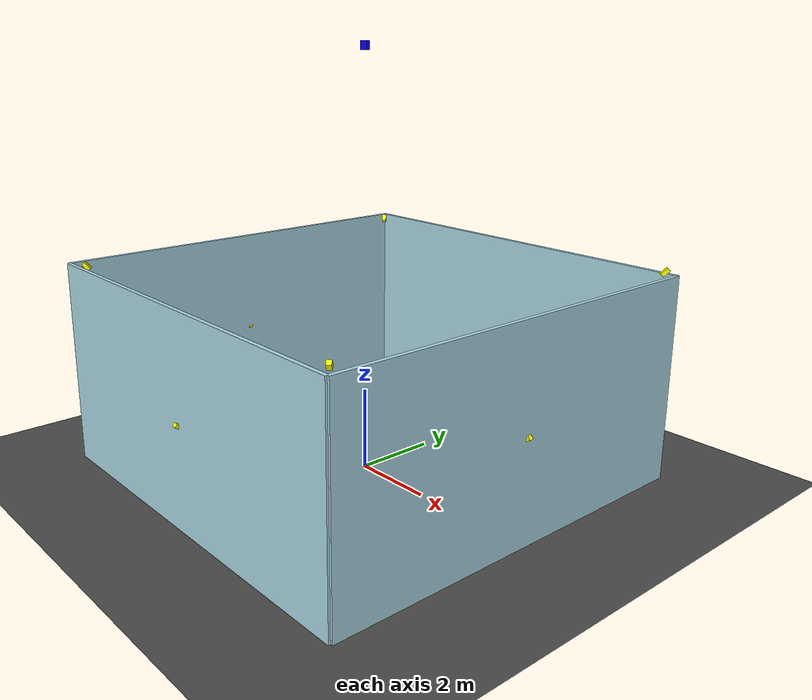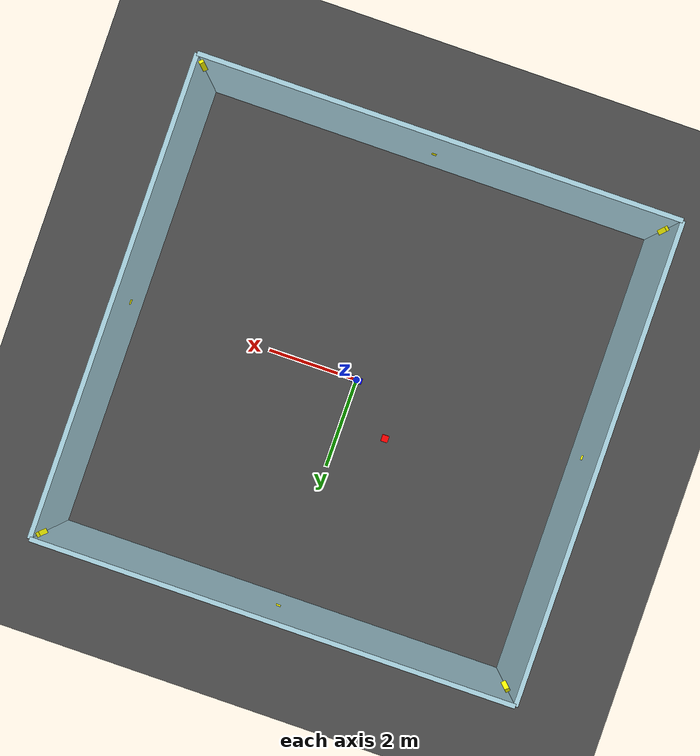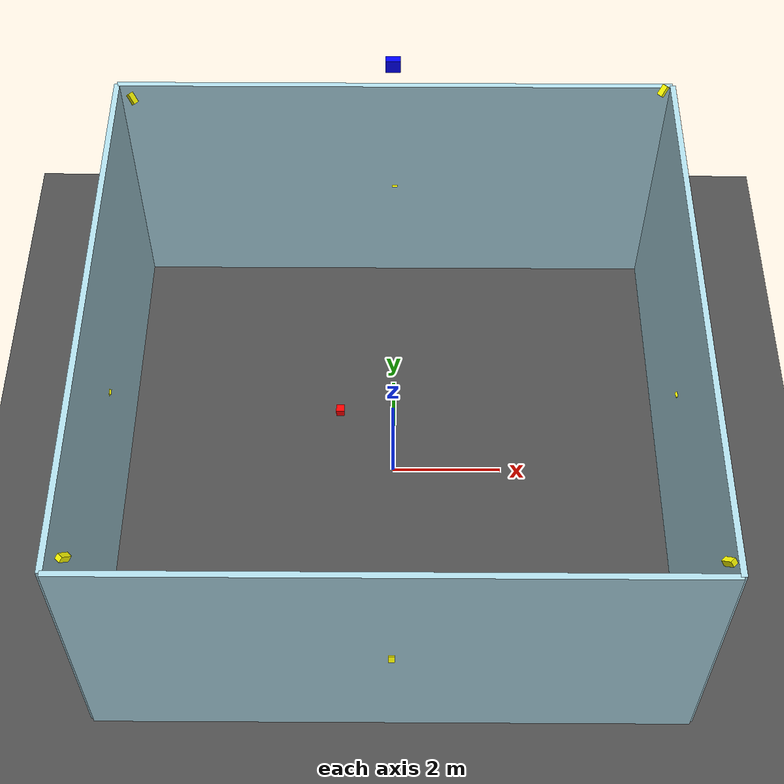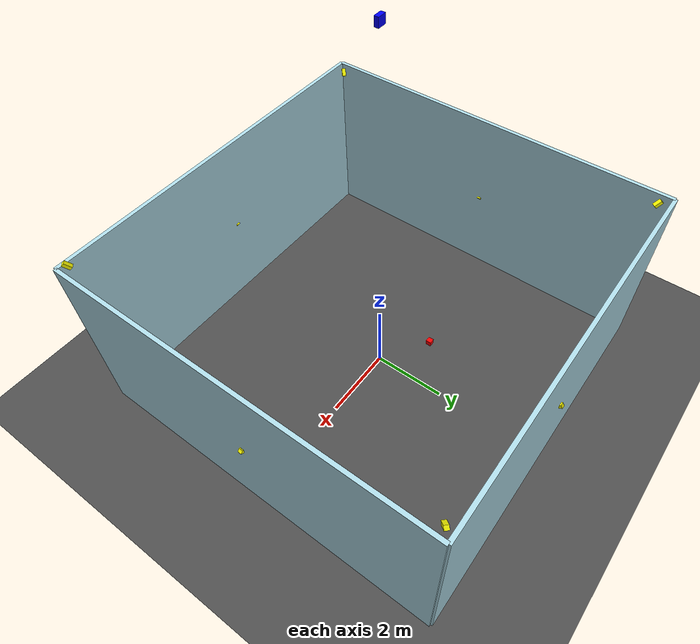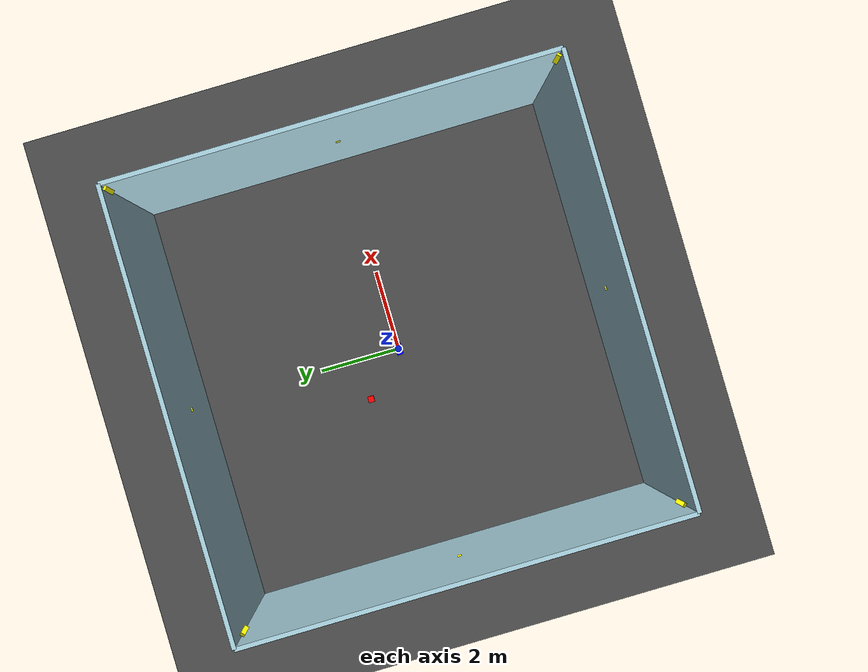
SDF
<?xml version="1.0" ?>

<sdf version="1.7">
  <world name="default">
    <ambient>0.5 0.5 0.5 1</ambient>
    <gravity>0 0 -9.8</gravity>

<!-- Ground plane: 10×10 m -->
<model name="ground_plane">
  <static>true</static>
  <link name="link">
    <collision name="collision">
      <geometry>
        <plane>
          <normal>0 0 1</normal>
          <size>10 10</size>
        </plane>
      </geometry>
    </collision>
    <visual name="visual">
      <geometry>
        <plane>
          <normal>0 0 1</normal>
          <size>10 10</size>
        </plane>
      </geometry>
      <material>
        <ambient>0.3 0.3 0.3 1</ambient>
        <diffuse>0.3 0.3 0.3 1</diffuse>
      </material>
      <plugin
        filename="ignition-gazebo-thermal-system"
        name="ignition::gazebo::systems::Thermal">
        <temperature>280.0</temperature>
      </plugin>
    </visual>
  </link>
</model>

<!-- Walls: 10×10×5 m room without roof -->
<model name="walls">
  <static>true</static>
  <link name="link">
    <!-- Front wall (y=+5) -->
    <collision name="front_wall_collision">
      <geometry>
        <box>
          <size>10 0.1 5</size>
        </box>
      </geometry>
      <pose>0 5 2.5 0 0 0</pose>
    </collision>
    <visual name="front_wall_visual">
      <geometry>
        <box>
          <size>10 0.1 5</size>
        </box>
      </geometry>
      <pose>0 5 2.5 0 0 0</pose>
      <material>
        <ambient>0.68 0.85 0.90 1</ambient>
        <diffuse>0.68 0.85 0.90 1</diffuse>
      </material>
    </visual>
    <!-- Back wall (y=-5) -->
    <collision name="back_wall_collision">
      <geometry>
        <box>
          <size>10 0.1 5</size>
        </box>
      </geometry>
      <pose>0 -5 2.5 0 0 0</pose>
    </collision>
    <visual name="back_wall_visual">
      <geometry>
        <box>
          <size>10 0.1 5</size>
        </box>
      </geometry>
      <pose>0 -5 2.5 0 0 0</pose>
      <material>
        <ambient>0.68 0.85 0.90 1</ambient>
        <diffuse>0.68 0.85 0.90 1</diffuse>
      </material>
          <plugin
            filename="ignition-gazebo-thermal-system"
            name="ignition::gazebo::systems::Thermal">
            <temperature>280.0</temperature>
          </plugin>
    </visual>
    <!-- Left wall (x=-5) -->
    <collision name="left_wall_collision">
      <geometry>
        <box>
          <size>0.1 10 5</size>
        </box>
      </geometry>
      <pose>-5 0 2.5 0 0 0</pose>
    </collision>
    <visual name="left_wall_visual">
      <geometry>
        <box>
          <size>0.1 10 5</size>
        </box>
      </geometry>
      <pose>-5 0 2.5 0 0 0</pose>
      <material>
        <ambient>0.68 0.85 0.90 1</ambient>
        <diffuse>0.68 0.85 0.90 1</diffuse>
      </material>
          <plugin
            filename="ignition-gazebo-thermal-system"
            name="ignition::gazebo::systems::Thermal">
            <temperature>280.0</temperature>
          </plugin>
    </visual>
    <!-- Right wall (x=+5) -->
    <collision name="right_wall_collision">
      <geometry>
        <box>
          <size>0.1 10 5</size>
        </box>
      </geometry>
      <pose>5 0 2.5 0 0 0</pose>
    </collision>
    <visual name="right_wall_visual">
      <geometry>
        <box>
          <size>0.1 10 5</size>
        </box>
      </geometry>
      <pose>5 0 2.5 0 0 0</pose>
      <material>
        <ambient>0.68 0.85 0.90 1</ambient>
        <diffuse>0.68 0.85 0.90 1</diffuse>
      </material>
          <plugin
            filename="ignition-gazebo-thermal-system"
            name="ignition::gazebo::systems::Thermal">
            <temperature>280.0</temperature>
          </plugin>
    </visual>
  </link>
</model>

<!-- Box target -->
<model name="box">
  <pose>-1 1 0.5 0 0 0</pose>
  <link name="box_link">
    <inertial>
      <inertia>
        <ixx>1</ixx>
        <ixy>0</ixy>
        <ixz>0</ixz>
        <iyy>1</iyy>
        <iyz>0</iyz>
        <izz>1</izz>
      </inertia>
      <mass>1.0</mass>
    </inertial>
    <collision name="box_collision">
      <geometry>
        <box>
          <size>0.15 0.15 0.15</size>
        </box>
      </geometry>
    </collision>
    <visual name="box_visual">
      <geometry>
        <box>
          <size>0.15 0.15 0.15</size>
        </box>
      </geometry>
      <material>
        <ambient>1 0 0 1</ambient>
        <diffuse>1 0 0 1</diffuse>
        <specular>1 0 0 1</specular>
      </material>
          <plugin
            filename="ignition-gazebo-thermal-system"
            name="ignition::gazebo::systems::Thermal">
            <temperature>500</temperature>
          </plugin>
    </visual>
  </link>
</model>

<!-- RGB camera at ceiling center, pointing down -->
<model name="rgb_camera_ceiling">
  <pose>0 0 10 -1.5708 0 0</pose>
  <link name="link">
    <!-- Visual for camera body -->
    <visual name="cam_visual">
      <geometry>
        <box><size>0.2 0.2 0.1</size></box>
      </geometry>
      <pose>0 0 0 0 0 0</pose>
      <material>
        <ambient>0 0 1 1</ambient>
        <diffuse>0 0 1 1</diffuse>
      </material>
    </visual>
    <sensor name="camera_sensor" type="camera">
      <pose>0 0 0.05 0 0 0</pose>
      <camera>
        <horizontal_fov>1.047</horizontal_fov>
        <image>
          <width>640</width>
          <height>480</height>
          <format>R8G8B8</format>
        </image>
        <clip>
          <near>0.1</near>
          <far>100</far>
        </clip>
      </camera>
      <always_on>1</always_on>
      <update_rate>30</update_rate>
      <visualize>true</visualize>
      <topic>/camera_ceiling/image_raw</topic>
      <plugin filename="libignition-gazebo-sensors-system.so" name="ignition::gazebo::systems::Sensors"/>
    </sensor>
  </link>
  <static>true</static>
</model>

<!-- Thermal corner cameras with visuals at mid-wall height -->
<model name="thermal_camera_corner_1">
  <!-- Place at wall corner midpoint height z=2.5 -->
  <pose>-4.75 -4.75 5.0 0 0.785 0.785</pose>
  <link name="link">
    <!-- Visual for camera body -->
    <visual name="cam_visual">
      <geometry>
        <box><size>0.2 0.1 0.1</size></box>
      </geometry>
      <!-- Slight forward offset so sensor sits at front of box -->
      <pose>0.1 0 0 0 0 0</pose>
      <material>
        <ambient>1 1 0 1</ambient>
        <diffuse>1 1 0 1</diffuse>
      </material>
    </visual>
    <sensor name="thermal_camera" type="thermal">
      <pose>0.1 0 0 0 0 0</pose>
      <camera>
        <horizontal_fov>1.047</horizontal_fov>
        <image><width>320</width><height>240</height><format>L16</format></image>
        <clip><near>0.1</near><far>100</far></clip>
      </camera>
      <always_on>1</always_on>
      <update_rate>30</update_rate>
      <visualize>true</visualize>
      <topic>/thermal_camera_corner_1/image</topic>
      <plugin filename="ignition-gazebo-thermal-sensor-system" name="ignition::gazebo::systems::ThermalSensor">
        <min_temp>253.15</min_temp>
        <max_temp>673.15</max_temp>
        <resolution>3.0</resolution>
      </plugin>
    </sensor>
  </link>
  <static>true</static>
</model>
<model name="thermal_camera_corner_2">
  <pose>4.75 -4.75 5.0 0 0.785 2.355</pose>
  <link name="link">
    <visual name="cam_visual">
      <geometry><box><size>0.2 0.1 0.1</size></box></geometry>
      <pose>-0.1 0 0 0 0 0</pose>
      <material><ambient>1 1 0 1</ambient><diffuse>1 1 0 1</diffuse></material>
    </visual>
    <sensor name="thermal_camera" type="thermal">
      <pose>-0.1 0 0 0 0 0</pose>
      <camera><horizontal_fov>1.047</horizontal_fov><image><width>320</width><height>240</height><format>L16</format></image><clip><near>0.1</near><far>100</far></clip></camera>
      <always_on>1</always_on><update_rate>30</update_rate><visualize>true</visualize>
      <topic>/thermal_camera_corner_2/image</topic>
      <plugin filename="ignition-gazebo-thermal-sensor-system" name="ignition::gazebo::systems::ThermalSensor">
        <min_temp>253.15</min_temp><max_temp>673.15</max_temp><resolution>3.0</resolution>
      </plugin>
    </sensor>
  </link>
  <static>true</static>
</model>
<model name="thermal_camera_corner_3">
  <pose>-4.75 4.75 5.0 0 0.785 -0.785</pose>
  <link name="link">
    <visual name="cam_visual">
      <geometry><box><size>0.2 0.1 0.1</size></box></geometry>
      <pose>0.1 0 0 0 0 0</pose>
      <material><ambient>1 1 0 1</ambient><diffuse>1 1 0 1</diffuse></material>
    </visual>
    <sensor name="thermal_camera" type="thermal">
      <pose>0.1 0 0 0 0 0</pose>
      <camera><horizontal_fov>1.047</horizontal_fov><image><width>320</width><height>240</height><format>L16</format></image><clip><near>0.1</near><far>100</far></clip></camera>
      <always_on>1</always_on><update_rate>30</update_rate><visualize>true</visualize>
      <topic>/thermal_camera_corner_3/image</topic>
      <plugin filename="ignition-gazebo-thermal-sensor-system" name="ignition::gazebo::systems::ThermalSensor">
        <min_temp>253.15</min_temp><max_temp>673.15</max_temp><resolution>3.0</resolution>
      </plugin>
    </sensor>
  </link>
  <static>true</static>
</model>
<model name="thermal_camera_corner_4">
  <pose>4.75 4.75 5.0 0 0.785 -2.355</pose>
  <link name="link">
    <visual name="cam_visual">
      <geometry><box><size>0.2 0.1 0.1</size></box></geometry>
      <pose>-0.1 0 0 0 0 0</pose>
      <material><ambient>1 1 0 1</ambient><diffuse>1 1 0 1</diffuse></material>
    </visual>
    <sensor name="thermal_camera" type="thermal">
      <pose>-0.1 0 0 0 0 0</pose>
      <camera><horizontal_fov>1.047</horizontal_fov><image><width>320</width><height>240</height><format>L16</format></image><clip><near>0.1</near><far>100</far></clip></camera>
      <always_on>1</always_on><update_rate>30</update_rate><visualize>true</visualize>
      <topic>/thermal_camera_corner_4/image</topic>
      <plugin filename="ignition-gazebo-thermal-sensor-system" name="ignition::gazebo::systems::ThermalSensor">
        <min_temp>253.15</min_temp><max_temp>673.15</max_temp><resolution>3.0</resolution>
      </plugin>
    </sensor>
  </link>
  <static>true</static>
</model>

<!-- Mid-wall thermal cameras at midpoint height z=2.5, inclined downward -->
<model name="thermal_camera_mid_front">
  <pose>0 5 2.5 0 0.6 -1.570</pose>
  <link name="link">
    <visual name="cam_visual">
      <geometry><box><size>0.2 0.1 0.1</size></box></geometry>
      <pose>0 0 -0.05 0 0 0</pose>
      <material><ambient>1 1 0 1</ambient><diffuse>1 1 0 1</diffuse></material>
    </visual>
    <sensor name="thermal_camera" type="thermal">
      <pose>0 0 -0.05 0 0 0</pose>
      <camera><horizontal_fov>1.047</horizontal_fov><image><width>320</width><height>240</height><format>L16</format></image><clip><near>0.1</near><far>100</far></clip></camera>
      <always_on>1</always_on><update_rate>30</update_rate><visualize>true</visualize>
      <topic>/thermal_camera_mid_front/image</topic>
      <plugin filename="ignition-gazebo-thermal-sensor-system" name="ignition::gazebo::systems::ThermalSensor">
        <min_temp>253.15</min_temp><max_temp>673.15</max_temp><resolution>3.0</resolution>
      </plugin>
    </sensor>
  </link>
  <static>true</static>
</model>
<model name="thermal_camera_mid_back">
  <pose>0 -5 2.5 0 0.6 1.57</pose>
  <link name="link">
    <visual name="cam_visual">
      <geometry><box><size>0.2 0.1 0.1</size></box></geometry>
      <pose>0 0 -0.05 0 0 0</pose>
      <material><ambient>1 1 0 1</ambient><diffuse>1 1 0 1</diffuse></material>
    </visual>
    <sensor name="thermal_camera" type="thermal">
      <pose>0 0 -0.05 0 0 0</pose>
      <camera><horizontal_fov>1.047</horizontal_fov><image><width>320</width><height>240</height><format>L16</format></image><clip><near>0.1</near><far>100</far></clip></camera>
      <always_on>1</always_on><update_rate>30</update_rate><visualize>true</visualize>
      <topic>/thermal_camera_mid_back/image</topic>
      <plugin filename="ignition-gazebo-thermal-sensor-system" name="ignition::gazebo::systems::ThermalSensor">
        <min_temp>253.15</min_temp><max_temp>673.15</max_temp><resolution>3.0</resolution>
      </plugin>
    </sensor>
  </link>
  <static>true</static>
</model>
<model name="thermal_camera_mid_left">
  <pose>-5 0 2.5 0 0.6 0.0</pose>
  <link name="link">
    <visual name="cam_visual">
      <geometry><box><size>0.2 0.1 0.1</size></box></geometry>
      <pose>0 0 -0.05 0 0 0</pose>
      <material><ambient>1 1 0 1</ambient><diffuse>1 1 0 1</diffuse></material>
    </visual>
    <sensor name="thermal_camera" type="thermal">
      <pose>0 0 -0.05 0 0 0</pose>
      <camera><horizontal_fov>1.047</horizontal_fov><image><width>320</width><height>240</height><format>L16</format></image><clip><near>0.1</near><far>100</far></clip></camera>
      <always_on>1</always_on><update_rate>30</update_rate><visualize>true</visualize>
      <topic>/thermal_camera_mid_left/image</topic>
      <plugin filename="ignition-gazebo-thermal-sensor-system" name="ignition::gazebo::systems::ThermalSensor">
        <min_temp>253.15</min_temp><max_temp>673.15</max_temp><resolution>3.0</resolution>
      </plugin>
    </sensor>
  </link>
  <static>true</static>
</model>
<model name="thermal_camera_mid_right">
  <pose>5 0 2.5 0 0.6 3.14</pose>
  <link name="link">
    <visual name="cam_visual">
      <geometry><box><size>0.2 0.1 0.1</size></box></geometry>
      <pose>0 0 -0.05 0 0 0</pose>
      <material><ambient>1 1 0 1</ambient><diffuse>1 1 0 1</diffuse></material>
    </visual>
    <sensor name="thermal_camera" type="thermal">
      <pose>0 0 -0.05 0 0 0</pose>
      <camera><horizontal_fov>1.047</horizontal_fov><image><width>320</width><height>240</height><format>L16</format></image><clip><near>0.1</near><far>100</far></clip></camera>
      <always_on>1</always_on><update_rate>30</update_rate><visualize>true</visualize>
      <topic>/thermal_camera_mid_right/image</topic>
      <plugin filename="ignition-gazebo-thermal-sensor-system" name="ignition::gazebo::systems::ThermalSensor">
        <min_temp>253.15</min_temp><max_temp>673.15</max_temp><resolution>3.0</resolution>
      </plugin>
    </sensor>
  </link>
  <static>true</static>
</model>

  </world>
</sdf>
